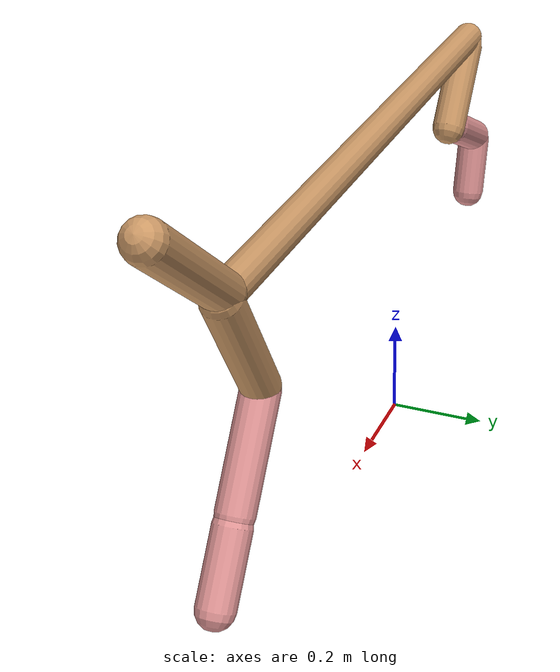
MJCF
<mujoco model="cheetah">
  <compiler angle="radian" coordinate="local" inertiafromgeom="true" settotalmass="14" />
  <default>
    <joint armature=".1" damping=".01" limited="true" solimplimit="0 .8 .03" solreflimit=".02 1" stiffness="8" />
    <geom conaffinity="0" condim="3" contype="1" friction="0.8 .1 .1" rgba="0.8 0.6 .4 1" solimp="0.0 0.8 0.01" solref="0.02 1" />
    <motor ctrllimited="true" ctrlrange="-1 1" />
  </default>
  <size nstack="300000" nuser_geom="1" />
  <option gravity="0 0 -9.81" timestep="0.01" />
  <worldbody>
    <body name="torso" pos="0.0 0.0 0.7071833358439563">
      <joint armature="0" axis="1 0 0" damping="0" limited="false" name="ignorex" pos="0 0 0" stiffness="0" type="slide" />
      <joint armature="0" axis="0 0 1" damping="0" limited="false" name="ignorez" pos="0 0 0" stiffness="0" type="slide" />
      <joint armature="0" axis="0 1 0" damping="0" limited="false" name="ignorey" pos="0 0 0" stiffness="0" type="hinge" />
      <geom fromto="-0.5 0.0 0.0 0.8511091936276767 0.0 0.0" name="torso" size="0.03230246438174869" type="capsule" />
      <geom axisangle="0 1 0 .87" name="head" pos="0.9511091936276767 0.0 0.1" size="0.03654544740019297 0.15" type="capsule" />

      <body name="bthigh" pos="-.5 0 0">
        <joint axis="0 1 0" damping="6" name="bthigh" pos="0 0 0" range="-.52 1.05" stiffness="240" type="hinge" />
        <geom axisangle="0 1 0 -3.8" name="bthigh" pos="0.0734775819030384 0.0 -0.0955208564739499" size="0.0368410351887801 0.10149999999999999" type="capsule" />
        <body name="bshin" pos="0.10695516380607678 0.0 -0.18104171294789978">
          <joint axis="0 1 0" damping="4.5" name="bshin" pos="0 0 0" range="-.785 .785" stiffness="180" type="hinge" />
          <geom axisangle="0 1 0 -2.03" name="bshin" pos="-0.0997507764050038 0.0 -0.0498753882025019" rgba="0.9 0.6 0.6 1" size="0.0368410351887801 0.105" type="capsule" />
          <body name="bfoot" pos="-0.1995015528100076 0.0 -0.0997507764050038">
            <joint axis="0 1 0" damping="3" name="bfoot" pos="0 0 0" range="-.4 .785" stiffness="120" type="hinge" />
            <geom axisangle="0 1 0 -.27" name="bfoot" pos="0.021667753813597694 0.0 -0.07005907066396588" rgba="0.9 0.6 0.6 1" size="0.0368410351887801 0.0658" type="capsule" />
            <inertial mass="10" />
          </body>
        </body>
      </body>
      <body name="fthigh" pos="0.8511091936276767 0.0 0.0">
        <joint axis="0 1 0" damping="4.5" name="fthigh" pos="0 0 0" range="-1.5 0.8" stiffness="180" type="hinge" />
        <geom axisangle="0 1 0 .52" name="fthigh" pos="-0.07050354618010911 0.0 -0.12086322202304418" size="0.03625358497928704 0.13399935530046675" type="capsule" />
        <body name="fshin" pos="-0.14100709236021822 0.0 -0.24172644404608837">
          <joint axis="0 1 0" damping="3" name="fshin" pos="0 0 0" range="-1.2 1.1" stiffness="120" type="hinge" />
          <geom axisangle="0 1 0 -.6" name="fshin" pos="0.06546633073207446 0.0 -0.09064568870594923" rgba="0.9 0.6 0.6 1" size="0.03625358497928704 0.10679647866052237" type="capsule" />
          <body name="ffoot" pos="0.13093266146414892 0.0 -0.18129137741189846">
            <joint axis="0 1 0" damping="1.5" name="ffoot" pos="0 0 0" range="-3.1 -0.3" stiffness="60" type="hinge" />
            <geom axisangle="0 1 0 -.6" name="ffoot" pos="0.04528442577112988 0.0 -0.07044244008842426" rgba="0.9 0.6 0.6 1" size="0.03625358497928704 0.07052597647392987" type="capsule" />
            <inertial mass="10" />
          </body>
        </body>
      </body>
    </body>
  </worldbody>
  <actuator>
    <motor gear="120" joint="bthigh" name="bthigh" />
    <motor gear="90" joint="bshin" name="bshin" />
    <motor gear="60" joint="bfoot" name="bfoot" />
    <motor gear="120" joint="fthigh" name="fthigh" />
    <motor gear="60" joint="fshin" name="fshin" />
    <motor gear="30" joint="ffoot" name="ffoot" />
  </actuator>
</mujoco>
